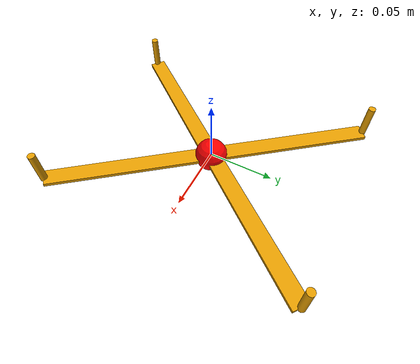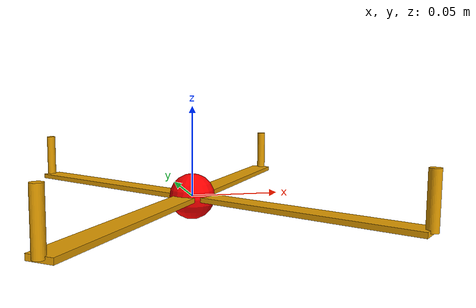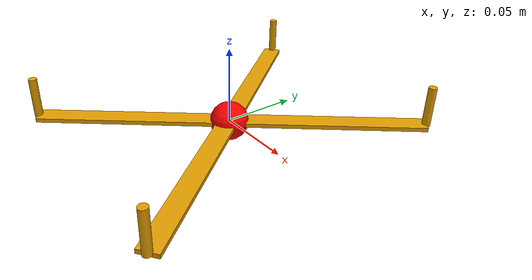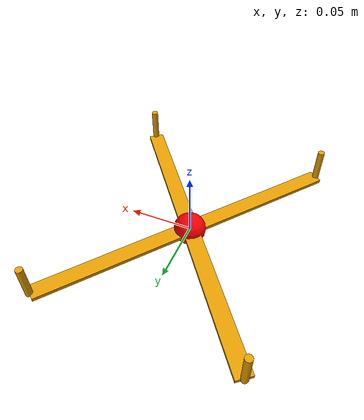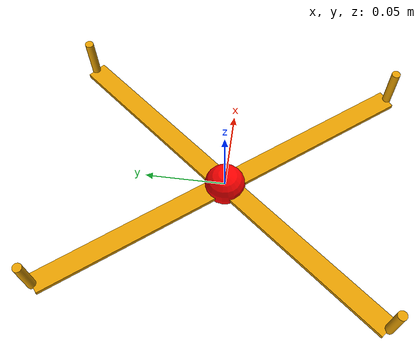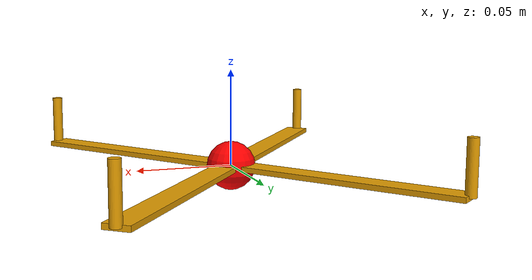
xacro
<?xml version="1.0" encoding="utf-8"?>

<robot xmlns:xacro="http://www.ros.org/wiki/xacro" name="neuroBEM" >
  <xacro:property name="ARM_X" value="0.078"/>
  <xacro:property name="ARM_Y" value="0.1"/>
  <xacro:property name="ARM_Z" value="0.027"/>
  <xacro:property name="MASS" value="0.772"/>
  <xacro:property name="IXX" value="0.00254"/>
  <xacro:property name="IYY" value="0.00214"/>
  <xacro:property name="IZZ" value="0.00436"/>

  <link name="base_link">

    <visual>
      <origin rpy="0 0 0" xyz="0 0 0"/>
      <geometry>
        <sphere radius="${0.1*sqrt(ARM_X**2+ARM_Y**2)}"/>
      </geometry>
      <material name="red">
        <color rgba="1.0 0.0 0.0 1.0"/>
      </material>
    </visual>

    <!-- Rotor 1 -->
    <visual>
      <origin xyz="${ARM_X/2} ${ARM_Y/2} 0" rpy="0 0 ${-atan(ARM_X/ARM_Y)}"/>
      <geometry>
        <box size="${0.1* sqrt(ARM_X**2+ARM_Y**2)} ${sqrt(ARM_X**2+ARM_Y**2)} ${0.1*ARM_Z}"/>
      </geometry>
    </visual>
    <visual>
      <origin xyz="${ARM_X} ${ARM_Y} ${ARM_Z/2}" rpy="0 0 0"/>
      <geometry>
        <cylinder radius="${0.1*ARM_Z}" length="${ARM_Z}"/>
      </geometry>
    </visual>

    <!-- Rotor 2 -->
    <visual>
      <origin xyz="${-ARM_X/2} ${ARM_Y/2} 0" rpy="0 0 ${-atan(-ARM_X/ARM_Y)}"/>
      <geometry>
        <box size="${0.1* sqrt(ARM_X**2+ARM_Y**2)} ${sqrt(ARM_X**2+ARM_Y**2)} ${0.1*ARM_Z}"/>
      </geometry>
    </visual>
    <visual>
      <origin xyz="${-ARM_X} ${ARM_Y} ${ARM_Z/2}" rpy="0 0 0"/>
      <geometry>
        <cylinder radius="${0.1*ARM_Z}" length="${ARM_Z}"/>
      </geometry>
    </visual>

    <!-- Rotor 3 -->
    <visual>
      <origin xyz="${-ARM_X/2} ${-ARM_Y/2} 0" rpy="0 0 ${-atan(ARM_X/ARM_Y)}"/>
      <geometry>
        <box size="${0.1* sqrt(ARM_X**2+ARM_Y**2)} ${sqrt(ARM_X**2+ARM_Y**2)} ${0.1*ARM_Z}"/>
      </geometry>
    </visual>
    <visual>
      <origin xyz="${-ARM_X} ${-ARM_Y} ${ARM_Z/2}" rpy="0 0 0"/>
      <geometry>
        <cylinder radius="${0.1*ARM_Z}" length="${ARM_Z}"/>
      </geometry>
    </visual>

    <!-- Rotor 4 -->
    <visual>
      <origin xyz="${ARM_X/2} ${-ARM_Y/2} 0" rpy="0 0 ${-atan(-ARM_X/ARM_Y)}"/>
      <geometry>
        <box size="${0.1* sqrt(ARM_X**2+ARM_Y**2)} ${sqrt(ARM_X**2+ARM_Y**2)} ${0.1*ARM_Z}"/>
      </geometry>
    </visual>
    <visual>
      <origin xyz="${ARM_X} ${-ARM_Y} ${ARM_Z/2}" rpy="0 0 0"/>
      <geometry>
        <cylinder radius="${0.1*ARM_Z}" length="${ARM_Z}"/>
      </geometry>
    </visual>

  </link>

  <link name="prop0_link">
    <inertial>
      <origin rpy="0 0 0" xyz="${ARM_X} -${ARM_Y} ${ARM_Z}" />
      <mass value="0" />
      <inertia ixx="0" ixy="0" ixz="0" iyy="0" iyz="0" izz="0" />
    </inertial>
  </link>
  <joint name="prop0_joint" type="fixed">
      <parent link="base_link" />
      <child link="prop0_link" />
  </joint>

  <link name="prop1_link">
    <inertial>
      <origin rpy="0 0 0" xyz="${ARM_X} ${ARM_Y} ${ARM_Z}"/>
      <mass value="0"/>
      <inertia ixx="0" ixy="0" ixz="0" iyy="0" iyz="0" izz="0"/>
    </inertial>
  </link>
  <joint name="prop1_joint" type="fixed">
    <parent link="base_link"/>
    <child link="prop1_link"/>
  </joint>

  <link name="prop2_link">
    <inertial>
      <origin rpy="0 0 0" xyz="-${ARM_X} ${ARM_Y} ${ARM_Z}"/>
      <mass value="0"/>
      <inertia ixx="0" ixy="0" ixz="0" iyy="0" iyz="0" izz="0"/>
    </inertial>
  </link>
  <joint name="prop2_joint" type="fixed">
    <parent link="base_link"/>
    <child link="prop2_link"/>
  </joint>

  <link name="prop3_link">
    <inertial>
      <origin rpy="0 0 0" xyz="-${ARM_X} -${ARM_Y} ${ARM_Z}"/>
      <mass value="0"/>
      <inertia ixx="0" ixy="0" ixz="0" iyy="0" iyz="0" izz="0"/>
    </inertial>
  </link>

  <joint name="prop3_joint" type="fixed">
    <parent link="base_link"/>
    <child link="prop3_link"/>
  </joint>

</robot>
